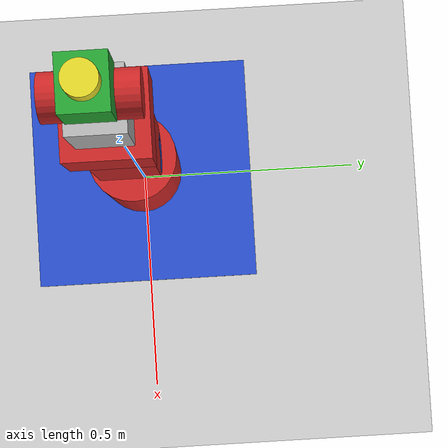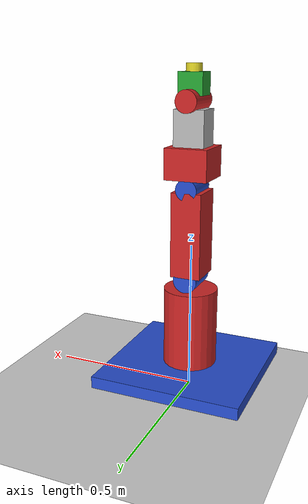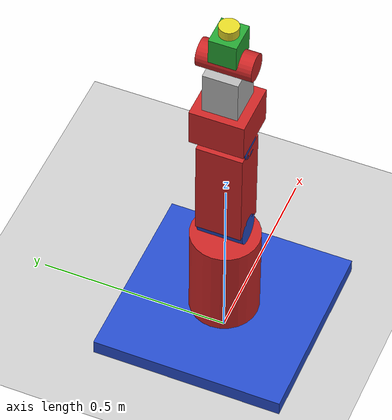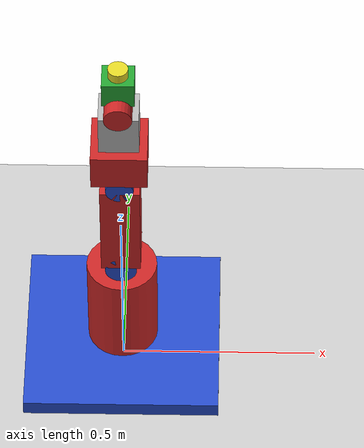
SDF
<?xml version="1.0"?>
<sdf version="1.4">
    <world name="default">

        <!-- Ground Plane -->
        <include>
            <uri>model://ground_plane</uri>
        </include>

        <include>
            <uri>model://sun</uri>
        </include>

        <model name="mymanip">

            <plugin name="any_plugin_name" filename="librhombus_gazebo_plugin.so"/>

            <link name="base">
                <pose>0 0 0.07 0 0 0</pose>
                <inertial>
                    <mass>10.0</mass>
                    <inertia>
                        <ixx>0.0083</ixx>
                        <ixy>0.0</ixy>
                        <ixz>0.0</ixz>
                        <iyy>0.0083</iyy>
                        <iyz>0.0</iyz>
                        <izz>0.0083</izz>
                    </inertia>
                </inertial>
                <collision name="base_collision">
                    <geometry>
                        <box>
                            <size>0.500 0.500 0.04</size>
                        </box>
                    </geometry>
                </collision>
                <visual name="base_visual">
                    <geometry>
                        <box>
                            <size>0.500 0.500 0.04</size>
                        </box>
                    </geometry>
                    <material>
                        <script>
                            <uri>file://media/materials/scripts/gazebo.material</uri>
                            <name>Gazebo/Blue</name>
                        </script>
                    </material>
                </visual>
            </link>
            <link name="first_link">
                <pose>0 0 0.2 0 0 0</pose>
                <inertial>
                    <mass>2.0</mass>
                    <inertia>
                        <ixx>0.0083</ixx>
                        <ixy>0.0</ixy>
                        <ixz>0.0</ixz>
                        <iyy>0.0083</iyy>
                        <iyz>0.0</iyz>
                        <izz>0.0345</izz>
                    </inertia>
                </inertial>
                <collision name="first_link_collision">
                    <geometry>
                        <cylinder>
                            <radius>0.09</radius>
                            <length>0.31</length>
                        </cylinder>
                    </geometry>
                </collision>
                <visual name="first_link_visual">
                    <geometry>
                        <cylinder>
                            <radius>0.09</radius>
                            <length>0.31</length>
                        </cylinder>
                    </geometry>
                    <material>
                        <script>
                            <uri>file://media/materials/scripts/gazebo.material</uri>
                            <name>Gazebo/Red</name>
                        </script>
                    </material>
                </visual>
            </link>
            <link name="second_link">
                <pose>0 0 0.345 0 0 0</pose>
                <inertial>
                    <mass>0.6</mass>
                    <inertia>
                        <ixx>0.0083</ixx>
                        <ixy>0.0</ixy>
                        <ixz>0.0</ixz>
                        <iyy>0.0083</iyy>
                        <iyz>0.0</iyz>
                        <izz>0.0083</izz>
                    </inertia>
                </inertial>
                <collision name="second_link_collision">
                    <pose>0 0 0.05 1.57079633 0 0</pose>
                    <geometry>
                        <cylinder>
                            <radius>0.04</radius>
                            <length>0.12</length>
                        </cylinder>
                    </geometry>
                </collision>
                <visual name="second_link_visual">
                    <pose>0 0 0.05 1.57079633 0 0</pose>
                    <geometry>
                        <cylinder>
                            <radius>0.04</radius>
                            <length>0.12</length>
                        </cylinder>
                    </geometry>
                    <material>
                        <script>
                            <uri>file://media/materials/scripts/gazebo.material</uri>
                            <name>Gazebo/Blue</name>
                        </script>
                    </material>
                </visual>
                <collision name="second_link_arm_collision">
                    <pose>0 0 0.2 0 0 0</pose>
                    <geometry>
                        <box>
                            <size>0.1 0.12 0.28</size>
                        </box>
                    </geometry>
                </collision>
                <visual name="second_link_arm_visual">
                    <pose>0 0 0.2 0 0 0</pose>
                    <geometry>
                        <box>
                            <size>0.1 0.12 0.28</size>
                        </box>
                    </geometry>
                    <material>
                        <script>
                            <uri>file://media/materials/scripts/gazebo.material</uri>
                            <name>Gazebo/Red</name>
                        </script>
                    </material>
                </visual>
            </link>
            <link name="third_link">
                <pose>0 0 0.625 0 0 0</pose>
                <inertial>
                    <mass>0.3</mass>
                    <inertia>
                        <ixx>0.0083</ixx>
                        <ixy>0.0</ixy>
                        <ixz>0.0</ixz>
                        <iyy>0.0083</iyy>
                        <iyz>0.0</iyz>
                        <izz>0.0083</izz>
                    </inertia>
                </inertial>
                <collision name="third_link_collision">
                    <pose>0 0 0.07 1.57079633 0 0</pose>
                    <geometry>
                        <cylinder>
                            <radius>0.035</radius>
                            <length>0.12</length>
                        </cylinder>
                    </geometry>
                </collision>
                <visual name="third_link_visual">
                    <pose>0 0 0.07 1.57079633 0 0</pose>
                    <geometry>
                        <cylinder>
                            <radius>0.035</radius>
                            <length>0.12</length>
                        </cylinder>
                    </geometry>
                    <material>
                        <script>
                            <uri>file://media/materials/scripts/gazebo.material</uri>
                            <name>Gazebo/Blue</name>
                        </script>
                    </material>
                </visual>
                <collision name="third_link_arm_collision">
                    <pose>0 0 0.15 0 0 0</pose>
                    <geometry>
                        <box>
                            <size>0.14 0.14 0.1</size>
                        </box>
                    </geometry>
                </collision>
                <visual name="third_link_arm_visual">
                    <pose>0 0 0.15 0 0 0</pose>
                    <geometry>
                        <box>
                            <size>0.14 0.14 0.1</size>
                        </box>
                    </geometry>
                    <material>
                        <script>
                            <uri>file://media/materials/scripts/gazebo.material</uri>
                            <name>Gazebo/Red</name>
                        </script>
                    </material>
                </visual>
            </link>
            <link name="fourth_link">
                <pose>0 0 0.875 0 0 0</pose>
                <inertial>
                    <mass>0.2</mass>
                    <inertia>
                        <ixx>0.0083</ixx>
                        <ixy>0.0</ixy>
                        <ixz>0.0</ixz>
                        <iyy>0.0083</iyy>
                        <iyz>0.0</iyz>
                        <izz>0.0083</izz>
                    </inertia>
                </inertial>
                <collision name="fourth_link_collision">
                    <geometry>
                        <box>
                            <size>0.1 0.09 0.13</size>
                        </box>
                    </geometry>
                </collision>
                <visual name="fourth_link_visual">
                    <geometry>
                        <box>
                            <size>0.1 0.09 0.13</size>
                        </box>
                    </geometry>
                </visual>
            </link>
            <link name="fifth_link">
                <pose>0 0 0.965 0 0 0</pose>
                <inertial>
                    <mass>0.1</mass>
                    <inertia>
                        <ixx>0.0083</ixx>
                        <ixy>0.0</ixy>
                        <ixz>0.0</ixz>
                        <iyy>0.0083</iyy>
                        <iyz>0.0</iyz>
                        <izz>0.0083</izz>
                    </inertia>
                </inertial>
                <collision name="fifth_link_collision">
                    <pose>0 0 0 1.57079633 0 0</pose>
                    <geometry>
                        <cylinder>
                            <radius>0.035</radius>
                            <length>0.14</length>
                        </cylinder>
                    </geometry>
                </collision>
                <visual name="fifth_link_visual">
                    <pose>0 0 0 1.57079633 0 0</pose>
                    <geometry>
                        <cylinder>
                            <radius>0.035</radius>
                            <length>0.14</length>
                        </cylinder>
                    </geometry>
                    <material>
                        <script>
                            <uri>file://media/materials/scripts/gazebo.material</uri>
                            <name>Gazebo/Red</name>
                        </script>
                    </material>
                </visual>
                <collision name="fifth_link_arm_collision">
                    <pose>0 0 0.05 0 0 0</pose>
                    <geometry>
                        <box>
                            <size>0.08 0.07 0.07</size>
                        </box>
                    </geometry>
                </collision>
                <visual name="fifth_link_arm_visual">
                    <pose>0 0 0.05 0 0 0</pose>
                    <geometry>
                        <box>
                            <size>0.08 0.07 0.07</size>
                        </box>
                    </geometry>
                    <material>
                        <script>
                            <uri>file://media/materials/scripts/gazebo.material</uri>
                            <name>Gazebo/Green</name>
                        </script>
                    </material>
                </visual>
            </link>
            <link name="sixth_link">
                <pose>0 0 1.05 0 0 0</pose>
                <inertial>
                    <mass>0.1</mass>
                    <inertia>
                        <ixx>0.0083</ixx>
                        <ixy>0.0</ixy>
                        <ixz>0.0</ixz>
                        <iyy>0.0083</iyy>
                        <iyz>0.0</iyz>
                        <izz>0.0083</izz>
                    </inertia>
                </inertial>
                <collision name="sixth_link_collision">
                    <geometry>
                        <cylinder>
                            <radius>0.025</radius>
                            <length>0.05</length>
                        </cylinder>
                    </geometry>
                </collision>
                <visual name="sixth_link_visual">
                    <geometry>
                        <cylinder>
                            <radius>0.025</radius>
                            <length>0.05</length>
                        </cylinder>
                    </geometry>
                    <material>
                        <script>
                            <uri>file://media/materials/scripts/gazebo.material</uri>
                            <name>Gazebo/Yellow</name>
                        </script>
                    </material>
                </visual>
            </link>
            <joint name="base_revolute" type="revolute">
                <parent>base</parent>
                <child>first_link</child>
                <axis>
                    <dynamics>
                        <damping>1.000000</damping>
                        <friction>0.000000</friction>
                    </dynamics>
                    <limit>
                        <lower>-2.96705973</lower>
                        <upper>2.96705973</upper>
                    </limit>
                    <xyz>0 0 1</xyz>
                    <use_parent_model_frame>true</use_parent_model_frame>
                </axis>
            </joint>
            <joint name="first_rotation" type="revolute">
                <parent>first_link</parent>
                <child>second_link</child>
                <pose>0 0 0.05 0 0 0</pose>
                <axis>
                    <dynamics>
                        <damping>1.000000</damping>
                        <friction>0.000000</friction>
                    </dynamics>
                    <limit>
                        <lower>-2.96705973</lower>
                        <upper>0.872664626</upper>
                    </limit>
                    <xyz>0 1 0</xyz>
                    <use_parent_model_frame>true</use_parent_model_frame>
                </axis>
            </joint>
            <joint name="second_rotation" type="revolute">
                <parent>second_link</parent>
                <child>third_link</child>
                <pose>0 0 0.07 0 0 0</pose>
                <axis>
                    <dynamics>
                        <damping>1.000000</damping>
                        <friction>0.000000</friction>
                    </dynamics>
                    <limit>
                        <lower>-3.14159265</lower>
                        <upper>2.70526034</upper>
                    </limit>
                    <xyz>0 1 0</xyz>
                    <use_parent_model_frame>true</use_parent_model_frame>
                </axis>
            </joint>
            <joint name="third_rotation" type="revolute">
                <parent>third_link</parent>
                <child>fourth_link</child>
                <axis>
                    <dynamics>
                        <damping>1.000000</damping>
                        <friction>0.000000</friction>
                    </dynamics>
                    <xyz>0 0 1</xyz>
                    <use_parent_model_frame>true</use_parent_model_frame>
                </axis>
            </joint>
            <joint name="fourth_rotation" type="revolute">
                <parent>fourth_link</parent>
                <child>fifth_link</child>
                <axis>
                    <dynamics>
                        <damping>1.000000</damping>
                        <friction>0.000000</friction>
                    </dynamics>
                    <limit>
                        <lower>-1.04719755</lower>
                        <upper>1.04719755</upper>
                    </limit>
                    <xyz>0 1 0</xyz>
                    <use_parent_model_frame>true</use_parent_model_frame>
                </axis>
            </joint>
            <joint name="fifth_rotation" type="revolute">
                <parent>fifth_link</parent>
                <child>sixth_link</child>
                <axis>
                    <dynamics>
                        <damping>1.000000</damping>
                        <friction>0.000000</friction>
                    </dynamics>
                    <xyz>0 0 1</xyz>
                    <use_parent_model_frame>true</use_parent_model_frame>
                </axis>
            </joint>

        </model>
    </world>
</sdf>
